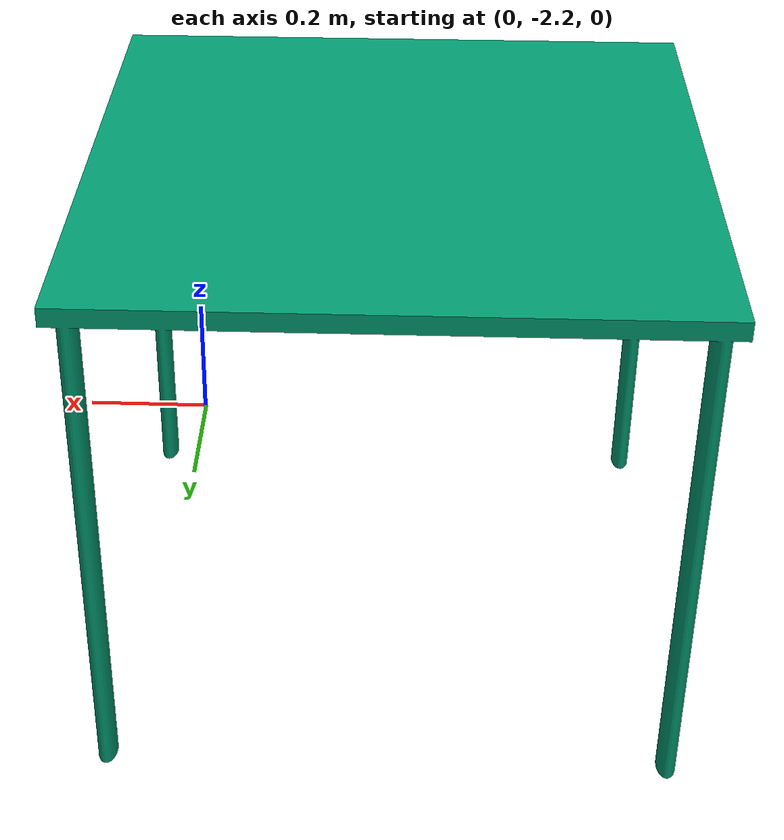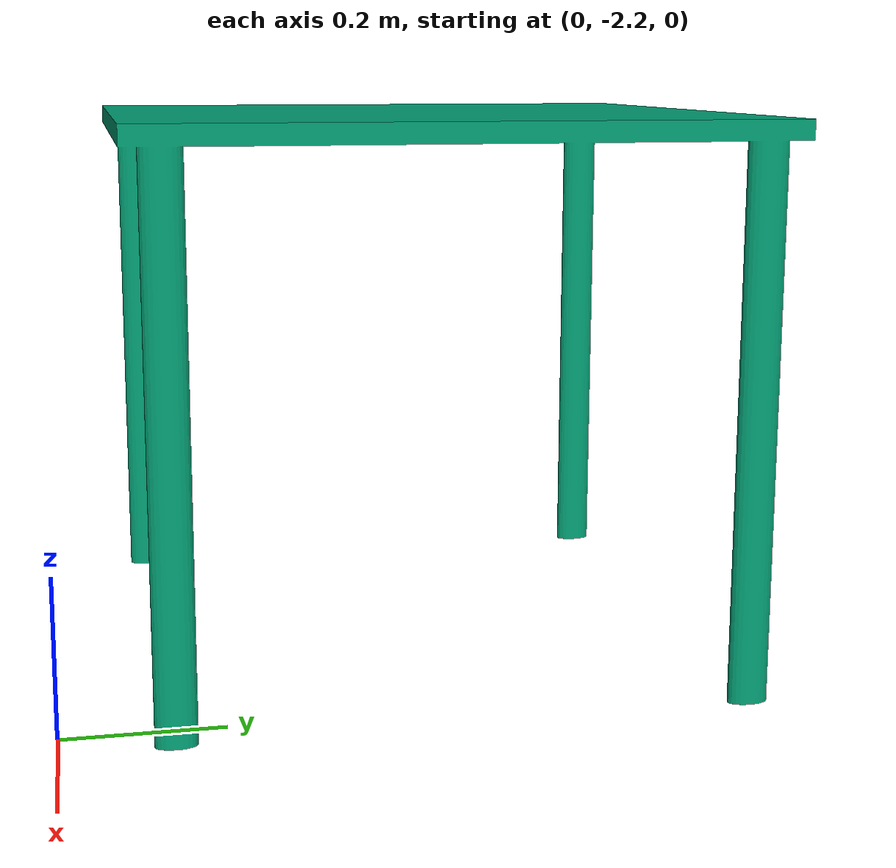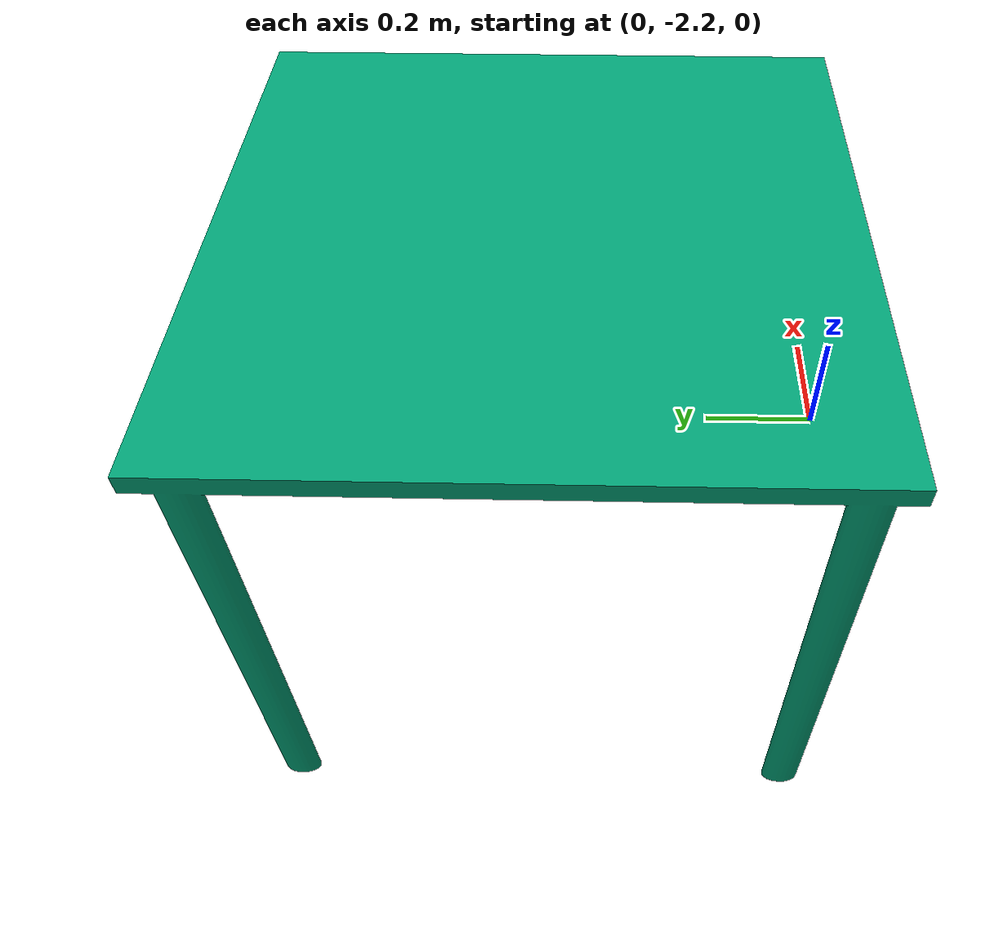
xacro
<?xml version="1.0"?>

<robot name="iai_oven_area" xmlns:xacro="http://ros.org/wiki/xacro">

  <xacro:property name="pi" value="3.1415926535897931" />
  <xacro:property name="simulated" value="true" />

  <macro name="sphere_inertia" params="radius mass">
        <inertial>
          <origin xyz="0.0 0.0 0.0" rpy="0 0 0"/>
          <mass value="1"/>
          <inertia
              ixx="1" ixy="0.0" ixz="0.0"
              iyy="1" iyz="0.0"
              izz="1"/>
        </inertial>

  </macro>

  <link name="room_link">

      <sphere_inertia radius="0" mass="0"/>
  </link>
  <xacro:if value="${simulated}">
    <link name="world"/>
    <joint name="world_room_joint" type="fixed">
        <origin xyz="0.02 -0.01 0" rpy="0 0 0" />
        <parent link="world"/>
        <child link="room_link"/>
      </joint>

  </xacro:if>

  <gazebo>
      <static>false</static>
  </gazebo>
  <!--- FIXME THIS should NOT be here -->
   <xacro:include filename="$(find iai_kitchen)/urdf/IAI_tables.urdf.xacro"/>

  <iai_table_1 name="table_area" parent="room_link">
    <origin xyz="-0.35 -1.7 0" rpy="0 0 ${pi}" />
  </iai_table_1>
  <!-- 80cm, 80cm, 71,7cm -->

</robot>

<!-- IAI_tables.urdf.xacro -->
<robot name="iai_table" xmlns:xacro="http://ros.org/wiki/xacro">

  <macro name="iai_table_1" params="name parent *origin">
    <!-- LINKS -->

    <link name="${name}_main">

      <sphere_inertia radius="0" mass="0"/>
      <visual>
        <origin xyz="0 0 0" rpy="0 0 0" />
        <geometry>
          <mesh filename="package://iai_kitchen/meshes/misc/square_table.dae"/>
        </geometry>
      </visual>
      <collision>
        <origin xyz="0 0 0" rpy="0 0 0" />
        <geometry>
          <mesh filename="package://iai_kitchen/meshes/misc/square_table.stl"/>
        </geometry>
      </collision>
    </link>

    <!-- JOINTS -->

    <joint name="${name}_main_joint" type="fixed">
      <xacro:insert_block name="origin" />
      <parent link="${parent}"/>
      <child link="${name}_main"/>
    </joint>
  </macro>
</robot>
